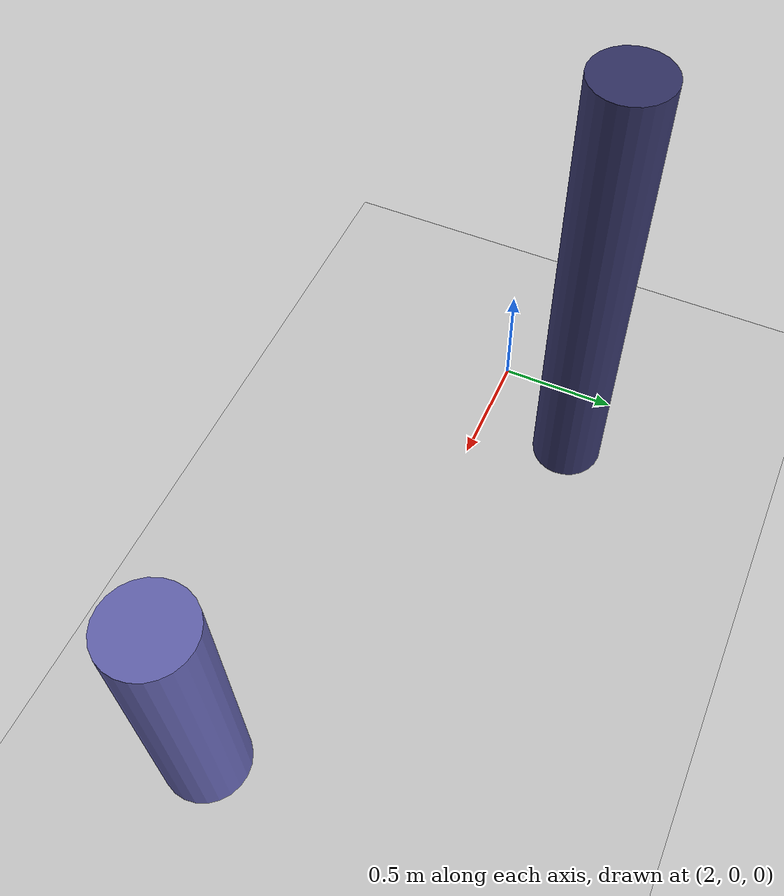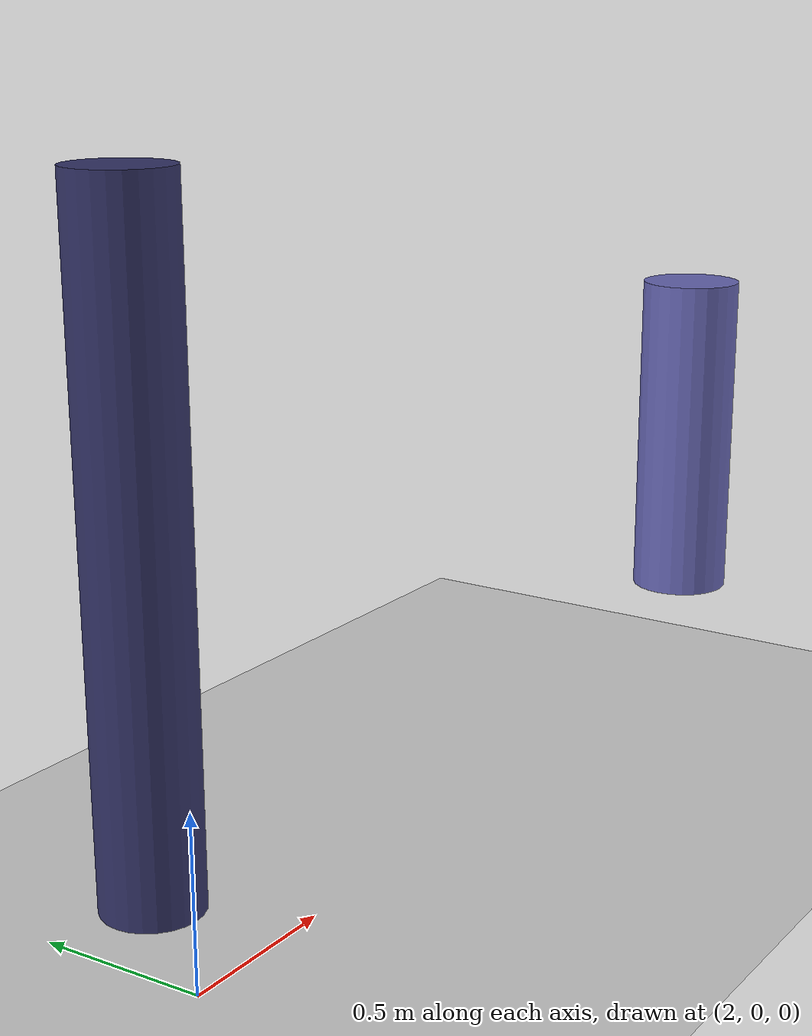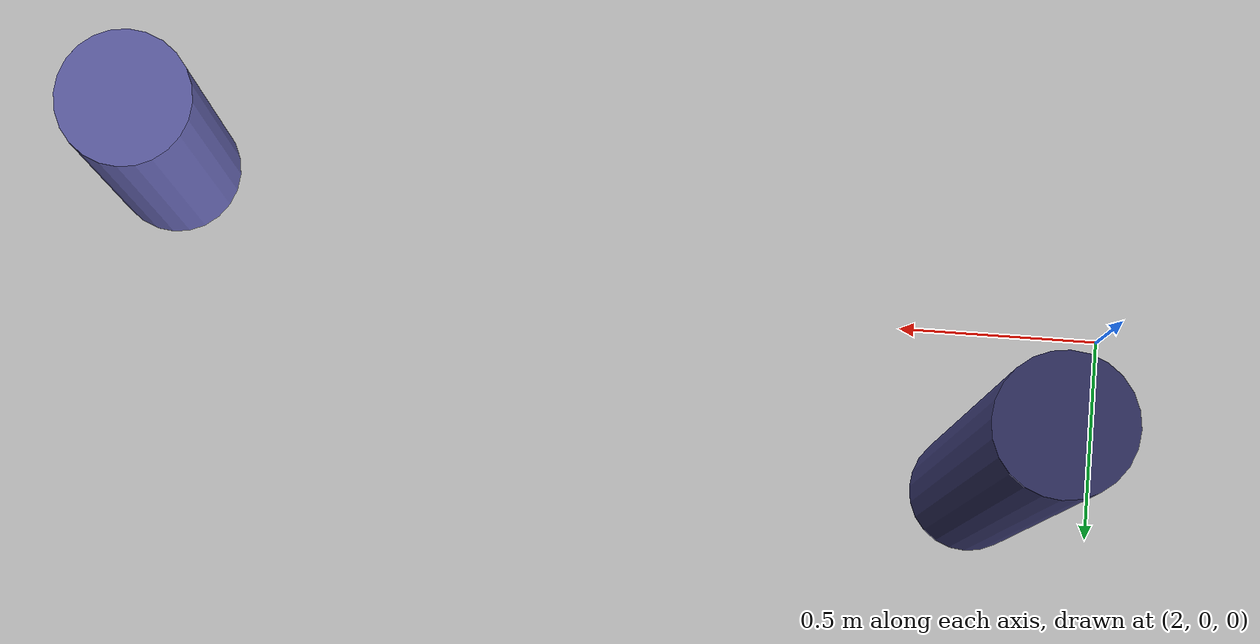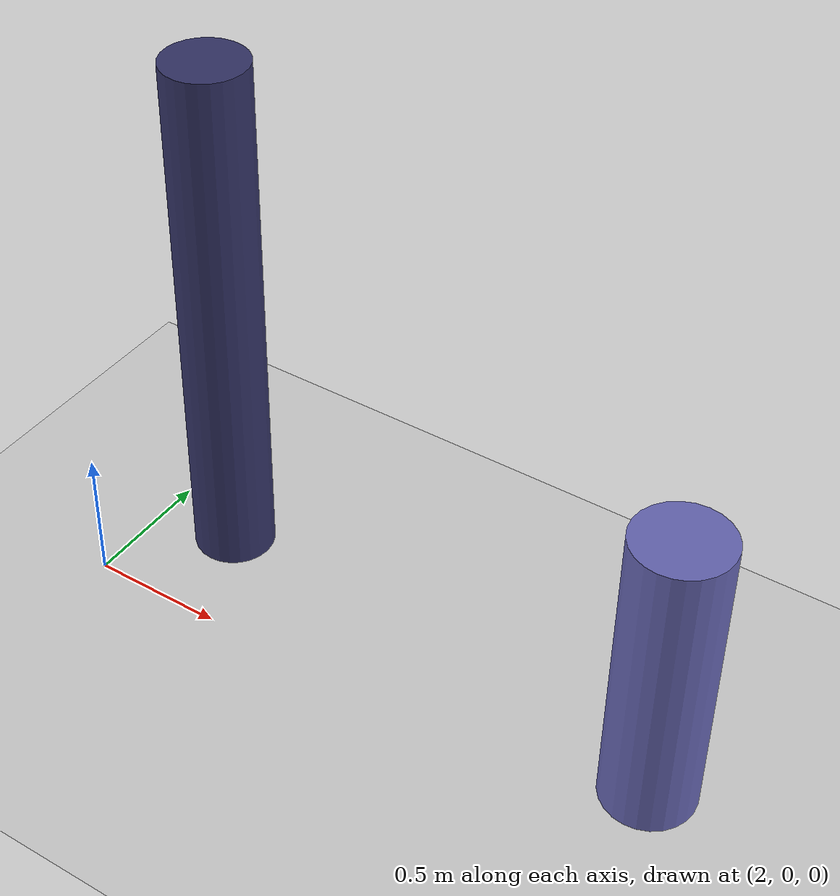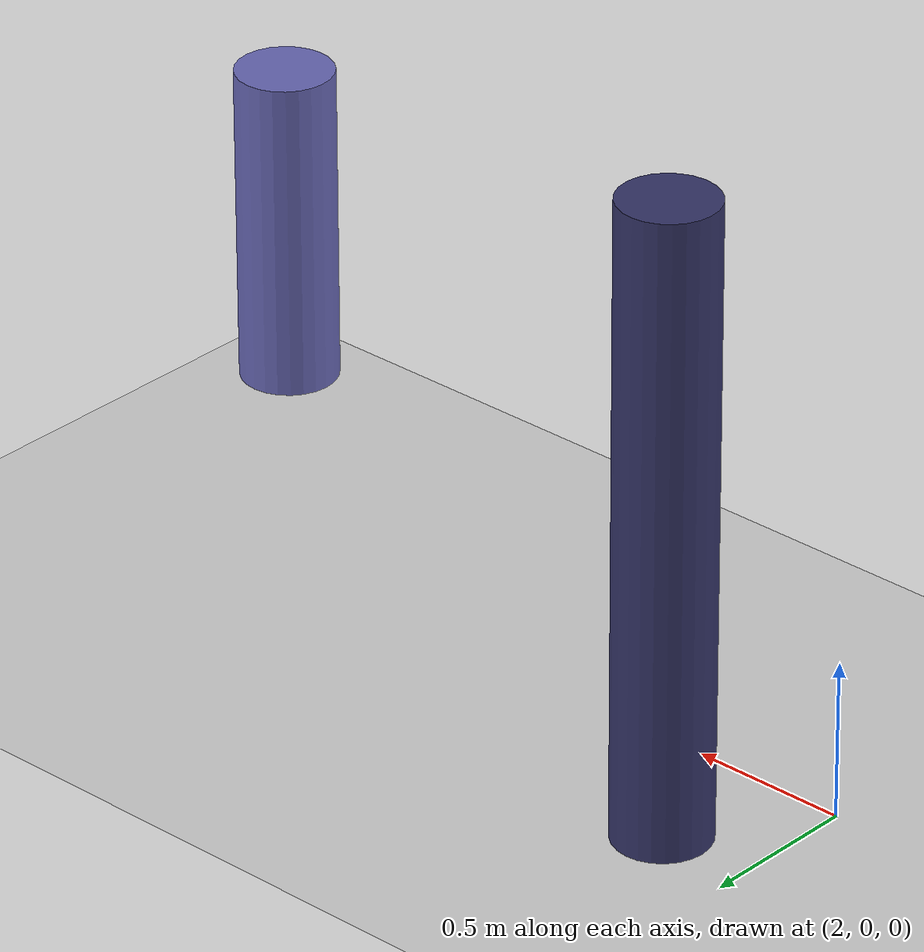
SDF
<sdf version='1.10'>
  <world name='empty'>
    <physics name='1ms' type='ignored'>
      <max_step_size>0.15</max_step_size>
      <real_time_factor>1</real_time_factor>
      <real_time_update_rate>1000</real_time_update_rate>
    </physics>
    <plugin name='gz::sim::systems::Physics' filename='gz-sim-physics-system'/>
    <plugin name='gz::sim::systems::UserCommands' filename='gz-sim-user-commands-system'/>
    <plugin name='gz::sim::systems::SceneBroadcaster' filename='gz-sim-scene-broadcaster-system'/>
    <plugin
        filename="gz-sim-sensors-system"
        name="gz::sim::systems::Sensors">
        <render_engine>ogre2</render_engine>
    </plugin>
    <plugin
        filename="gz-sim-imu-system"
        name="gz::sim::systems::Imu">
    </plugin>
    <plugin name='gz::sim::systems::Contact' filename='gz-sim-contact-system'/>
    <gravity>0 0 -9.8000000000000007</gravity>
    <magnetic_field>5.5644999999999998e-06 2.2875799999999999e-05 -4.2388400000000002e-05</magnetic_field>
    <atmosphere type='adiabatic'/>
    <scene>
      <ambient>0.400000006 0.400000006 0.400000006 1</ambient>
      <background>0.699999988 0.699999988 0.699999988 1</background>
      <shadows>true</shadows>
    </scene>
    <model name='ground_plane'>
      <static>true</static>
      <link name='link'>
        <collision name='collision'>
          <geometry>
            <plane>
              <normal>0 0 1</normal>
              <size>100 100</size>
            </plane>
          </geometry>
          <surface>
            <friction>
              <ode/>
            </friction>
            <bounce/>
            <contact/>
          </surface>
        </collision>
        <visual name='visual'>
          <geometry>
            <plane>
              <normal>0 0 1</normal>
              <size>100 100</size>
            </plane>
          </geometry>
          <material>
            <ambient>0.800000012 0.800000012 0.800000012 1</ambient>
            <diffuse>0.800000012 0.800000012 0.800000012 1</diffuse>
            <specular>0.800000012 0.800000012 0.800000012 1</specular>
          </material>
        </visual>
        <pose>0 0 0 0 0 0</pose>
        <inertial>
          <pose>0 0 0 0 0 0</pose>
          <mass>1</mass>
          <inertia>
            <ixx>1</ixx>
            <ixy>0</ixy>
            <ixz>0</ixz>
            <iyy>1</iyy>
            <iyz>0</iyz>
            <izz>1</izz>
          </inertia>
        </inertial>
        <enable_wind>false</enable_wind>
      </link>
      <pose>0 0 0 0 0 0</pose>
      <self_collide>false</self_collide>
    </model>
    <light name='sun' type='directional'>
      <pose>0 0 10 0 0 0</pose>
      <cast_shadows>true</cast_shadows>
      <intensity>1</intensity>
      <direction>-0.5 0.10000000000000001 -0.90000000000000002</direction>
      <diffuse>0.800000012 0.800000012 0.800000012 1</diffuse>
      <specular>0.200000003 0.200000003 0.200000003 1</specular>
      <attenuation>
        <range>1000</range>
        <linear>0.01</linear>
        <constant>0.90000000000000002</constant>
        <quadratic>0.001</quadratic>
      </attenuation>
      <spot>
        <inner_angle>0</inner_angle>
        <outer_angle>0</outer_angle>
        <falloff>0</falloff>
      </spot>
    </light>

  <model name="reference bottle">
    <static>false</static>
    <pose>4.3 -0.2 1 0 0 0</pose>

    <link name="link">
    <inertial>
      <mass>0.1</mass>
      <inertia>
        <ixx>0.0275625</ixx>
        <ixy>0.0</ixy>
        <ixz>0.0</ixz>
        <iyy>0.0275625</iyy>
        <iyz>0.0</iyz>
        <izz>0.001125</izz>
      </inertia>
    </inertial>

    <visual name="visual">
      <geometry>
        <cylinder>
          <radius>0.15</radius>
          <length>1.0</length>
        </cylinder>
      </geometry>

      <material name="LightBlue">
        <ambient>0.4 0.4 0.7 1</ambient>
        <diffuse>0.4 0.4 0.7 1</diffuse>
        <specular>0.1 0.1 0.1 1</specular>
      </material>

    </visual>

    <collision name="collision">
      <geometry>
        <cylinder>
          <radius>0.15</radius>
          <length>1.0</length>
        </cylinder>
      </geometry>
      <surface>
        <contact>
          <collide_bitmask>0x01</collide_bitmask>
        </contact>
        <friction>
          <ode>
            <mu>0.6</mu>
            <mu2>0.6</mu2>
          </ode>
        </friction>
      </surface>
    </collision>
  </link>

  </model>

  <model name="tactical bottle">
    <static>false</static>
    <pose>2.3 0.4 1 0 0 0</pose>

    <link name="link">
    <inertial>
      <mass>0.1</mass>
      <inertia>
        <ixx>0.0275625</ixx>
        <ixy>0.0</ixy>
        <ixz>0.0</ixz>
        <iyy>0.0275625</iyy>
        <iyz>0.0</iyz>
        <izz>0.001125</izz>
      </inertia>
    </inertial>

    <visual name="visual">
      <geometry>
        <cylinder>
          <radius>0.15</radius>
          <length>2.0</length>
        </cylinder>
      </geometry>

      <material name="LightBlue">
        <ambient>0.2 0.2 0.4 1</ambient>
        <diffuse>0.2 0.2 0.4 1</diffuse>
        <specular>0.1 0.1 0.1 1</specular>
      </material>

    </visual>

    <collision name="collision">
      <geometry>
        <cylinder>
          <radius>0.15</radius>
          <length>2.0</length>
        </cylinder>
      </geometry>
      <surface>
        <contact>
          <collide_bitmask>0x01</collide_bitmask>
        </contact>
        <friction>
          <ode>
            <mu>0.6</mu>
            <mu2>0.6</mu2>
          </ode>
        </friction>
      </surface>
    </collision>
  </link>

  </model>

  </world>
</sdf>
